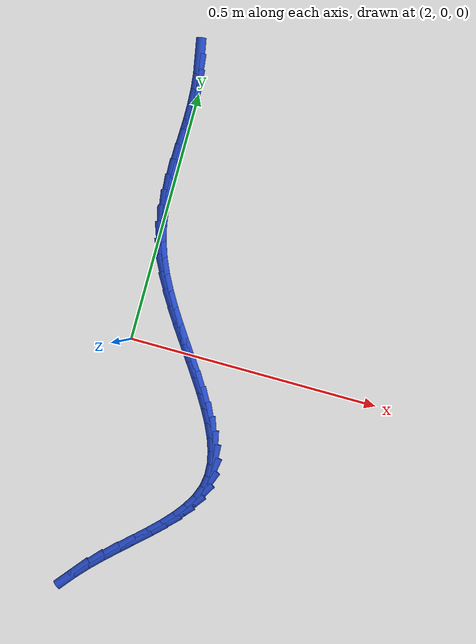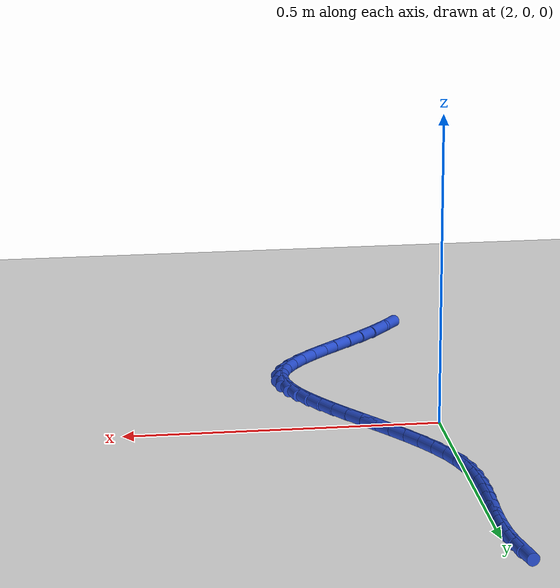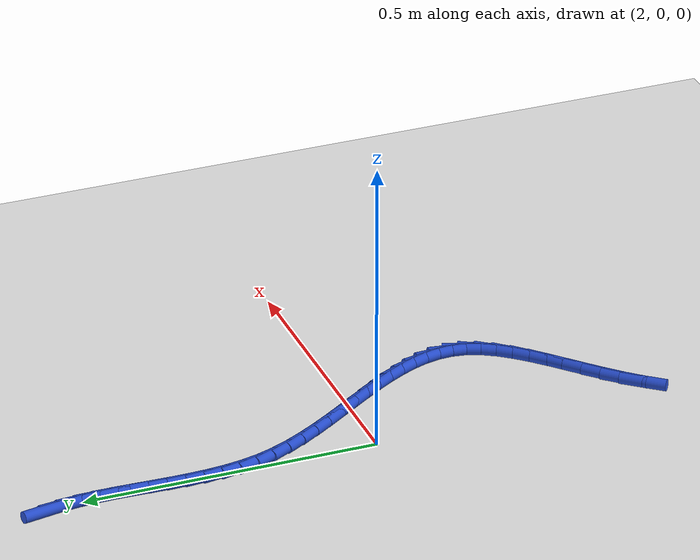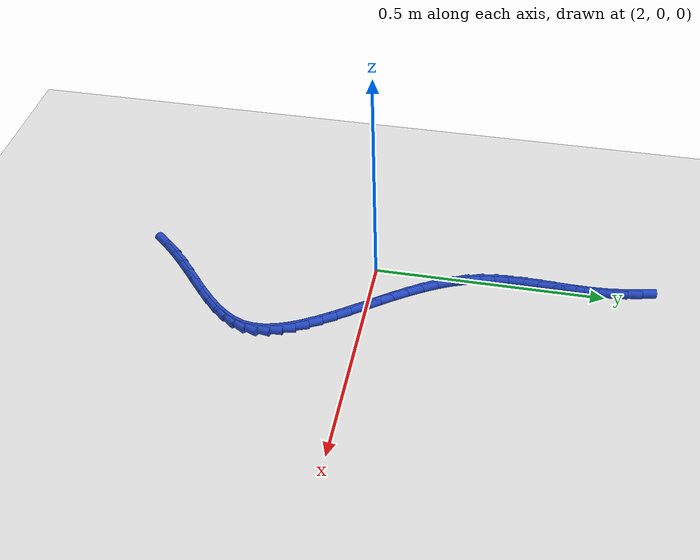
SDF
<sdf version="1.6">
 <world name="default">
  <model name="ground_plane">
   <static>1</static>
   <link name="link">
    <collision name="collision">
     <geometry><plane><normal>0 0 1</normal><size>100 100</size></plane></geometry>
     <surface><friction><ode><mu>100</mu><mu2>50</mu2></ode></friction></surface>
    </collision>
    <visual name="visual">
     <cast_shadows>0</cast_shadows>
     <geometry><plane><normal>0 0 1</normal><size>100 100</size></plane></geometry>
     <material>
      <script><uri>file://media/materials/scripts/gazebo.material</uri><name>Gazebo/WhiteGlow</name></script>
     </material>
    </visual>
   </link>
  </model>
  <model name="line">
   <link name="link_97">
    <pose>1.982863450508608 0.5677367094979131 0.01 0 1.57 -1.3891155950454888</pose>
    <collision name="collision">
     <geometry><cylinder><radius>0.01</radius><length>0.08</length></cylinder></geometry>
    </collision>
    <visual name="visual">
     <material>
      <script><name>Gazebo/Blue</name><uri>file://media/materials/scripts/gazebo.material</uri></script>
     </material>
     <geometry><cylinder><radius>0.01</radius><length>0.08</length></cylinder></geometry>
    </visual>
   </link>
   <link name="link_98">
    <pose>1.9884189875441824 0.5374953265242521 0.01 0 1.57 -1.458438260358546</pose>
    <collision name="collision">
     <geometry><cylinder><radius>0.01</radius><length>0.08</length></cylinder></geometry>
    </collision>
    <visual name="visual">
     <material>
      <script><name>Gazebo/Blue</name><uri>file://media/materials/scripts/gazebo.material</uri></script>
     </material>
     <geometry><cylinder><radius>0.01</radius><length>0.08</length></cylinder></geometry>
    </visual>
   </link>
   <link name="link_99">
    <pose>1.9918525388844555 0.5070650200397127 0.01 0 1.57 -1.5193888660239527</pose>
    <collision name="collision">
     <geometry><cylinder><radius>0.01</radius><length>0.08</length></cylinder></geometry>
    </collision>
    <visual name="visual">
     <material>
      <script><name>Gazebo/Blue</name><uri>file://media/materials/scripts/gazebo.material</uri></script>
     </material>
     <geometry><cylinder><radius>0.01</radius><length>0.08</length></cylinder></geometry>
    </visual>
   </link>
   <link name="link_100">
    <pose>1.9934245781234083 0.47651198069814393 0.01 0 1.57 -1.5640024327956468</pose>
    <collision name="collision">
     <geometry><cylinder><radius>0.01</radius><length>0.08</length></cylinder></geometry>
    </collision>
    <visual name="visual">
     <material>
      <script><name>Gazebo/Blue</name><uri>file://media/materials/scripts/gazebo.material</uri></script>
     </material>
     <geometry><cylinder><radius>0.01</radius><length>0.08</length></cylinder></geometry>
    </visual>
   </link>
   <link name="link_101">
    <pose>1.9936327978529906 0.4458643836063472 0.01 0 1.57 1.5495523296599962</pose>
    <collision name="collision">
     <geometry><cylinder><radius>0.01</radius><length>0.08</length></cylinder></geometry>
    </collision>
    <visual name="visual">
     <material>
      <script><name>Gazebo/Blue</name><uri>file://media/materials/scripts/gazebo.material</uri></script>
     </material>
     <geometry><cylinder><radius>0.01</radius><length>0.08</length></cylinder></geometry>
    </visual>
   </link>
   <link name="link_102">
    <pose>1.9929801939228236 0.41514955399719766 0.01 0 1.57 1.5379536326942955</pose>
    <collision name="collision">
     <geometry><cylinder><radius>0.01</radius><length>0.08</length></cylinder></geometry>
    </collision>
    <visual name="visual">
     <material>
      <script><name>Gazebo/Blue</name><uri>file://media/materials/scripts/gazebo.material</uri></script>
     </material>
     <geometry><cylinder><radius>0.01</radius><length>0.08</length></cylinder></geometry>
    </visual>
   </link>
   <link name="link_103">
    <pose>1.9919697621825294 0.3843948171035688 0.01 0 1.57 1.542680919656995</pose>
    <collision name="collision">
     <geometry><cylinder><radius>0.01</radius><length>0.08</length></cylinder></geometry>
    </collision>
    <visual name="visual">
     <material>
      <script><name>Gazebo/Blue</name><uri>file://media/materials/scripts/gazebo.material</uri></script>
     </material>
     <geometry><cylinder><radius>0.01</radius><length>0.08</length></cylinder></geometry>
    </visual>
   </link>
   <link name="link_104">
    <pose>1.9911044984817297 0.35362749815833566 0.01 0 1.57 1.5637368789330939</pose>
    <collision name="collision">
     <geometry><cylinder><radius>0.01</radius><length>0.08</length></cylinder></geometry>
    </collision>
    <visual name="visual">
     <material>
      <script><name>Gazebo/Blue</name><uri>file://media/materials/scripts/gazebo.material</uri></script>
     </material>
     <geometry><cylinder><radius>0.01</radius><length>0.08</length></cylinder></geometry>
    </visual>
   </link>
   <link name="link_105">
    <pose>1.990887398670048 0.3228749223943721 0.01 0 1.57 -1.5403907052928922</pose>
    <collision name="collision">
     <geometry><cylinder><radius>0.01</radius><length>0.08</length></cylinder></geometry>
    </collision>
    <visual name="visual">
     <material>
      <script><name>Gazebo/Blue</name><uri>file://media/materials/scripts/gazebo.material</uri></script>
     </material>
     <geometry><cylinder><radius>0.01</radius><length>0.08</length></cylinder></geometry>
    </visual>
   </link>
   <link name="link_106">
    <pose>1.9918214585971041 0.2921644150445527 0.01 0 1.57 -1.4865276493949087</pose>
    <collision name="collision">
     <geometry><cylinder><radius>0.01</radius><length>0.08</length></cylinder></geometry>
    </collision>
    <visual name="visual">
     <material>
      <script><name>Gazebo/Blue</name><uri>file://media/materials/scripts/gazebo.material</uri></script>
     </material>
     <geometry><cylinder><radius>0.01</radius><length>0.08</length></cylinder></geometry>
    </visual>
   </link>
   <link name="link_107">
    <pose>1.9944096741125217 0.2615233013417519 0.01 0 1.57 -1.4166688188383822</pose>
    <collision name="collision">
     <geometry><cylinder><radius>0.01</radius><length>0.08</length></cylinder></geometry>
    </collision>
    <visual name="visual">
     <material>
      <script><name>Gazebo/Blue</name><uri>file://media/materials/scripts/gazebo.material</uri></script>
     </material>
     <geometry><cylinder><radius>0.01</radius><length>0.08</length></cylinder></geometry>
    </visual>
   </link>
   <link name="link_108">
    <pose>1.9991550410659225 0.23097890651884334 0.01 0 1.57 -1.3320017417125347</pose>
    <collision name="collision">
     <geometry><cylinder><radius>0.01</radius><length>0.08</length></cylinder></geometry>
    </collision>
    <visual name="visual">
     <material>
      <script><name>Gazebo/Blue</name><uri>file://media/materials/scripts/gazebo.material</uri></script>
     </material>
     <geometry><cylinder><radius>0.01</radius><length>0.08</length></cylinder></geometry>
    </visual>
   </link>
   <link name="link_109">
    <pose>2.0065605553069283 0.20055855580870222 0.01 0 1.57 -1.2365067803038432</pose>
    <collision name="collision">
     <geometry><cylinder><radius>0.01</radius><length>0.08</length></cylinder></geometry>
    </collision>
    <visual name="visual">
     <material>
      <script><name>Gazebo/Blue</name><uri>file://media/materials/scripts/gazebo.material</uri></script>
     </material>
     <geometry><cylinder><radius>0.01</radius><length>0.08</length></cylinder></geometry>
    </visual>
   </link>
   <link name="link_110">
    <pose>2.017073633515142 0.1702898291479848 0.01 0 1.57 -1.150319866174723</pose>
    <collision name="collision">
     <geometry><cylinder><radius>0.01</radius><length>0.08</length></cylinder></geometry>
    </collision>
    <visual name="visual">
     <material>
      <script><name>Gazebo/Blue</name><uri>file://media/materials/scripts/gazebo.material</uri></script>
     </material>
     <geometry><cylinder><radius>0.01</radius><length>0.08</length></cylinder></geometry>
    </visual>
   </link>
   <link name="link_111">
    <pose>2.0305267273389247 0.14020312468599425 0.01 0 1.57 -1.0831588867777997</pose>
    <collision name="collision">
     <geometry><cylinder><radius>0.01</radius><length>0.08</length></cylinder></geometry>
    </collision>
    <visual name="visual">
     <material>
      <script><name>Gazebo/Blue</name><uri>file://media/materials/scripts/gazebo.material</uri></script>
     </material>
     <geometry><cylinder><radius>0.01</radius><length>0.08</length></cylinder></geometry>
    </visual>
   </link>
   <link name="link_112">
    <pose>2.046369840834295 0.11033059322232294 0.01 0 1.57 -1.0328209279517728</pose>
    <collision name="collision">
     <geometry><cylinder><radius>0.01</radius><length>0.08</length></cylinder></geometry>
    </collision>
    <visual name="visual">
     <material>
      <script><name>Gazebo/Blue</name><uri>file://media/materials/scripts/gazebo.material</uri></script>
     </material>
     <geometry><cylinder><radius>0.01</radius><length>0.08</length></cylinder></geometry>
    </visual>
   </link>
   <link name="link_113">
    <pose>2.064047216824827 0.08070441195868076 0.01 0 1.57 -0.9973031872608038</pose>
    <collision name="collision">
     <geometry><cylinder><radius>0.01</radius><length>0.08</length></cylinder></geometry>
    </collision>
    <visual name="visual">
     <material>
      <script><name>Gazebo/Blue</name><uri>file://media/materials/scripts/gazebo.material</uri></script>
     </material>
     <geometry><cylinder><radius>0.01</radius><length>0.08</length></cylinder></geometry>
    </visual>
   </link>
   <link name="link_114">
    <pose>2.083003098134097 0.0513567580967761 0.01 0 1.57 -0.975187289418705</pose>
    <collision name="collision">
     <geometry><cylinder><radius>0.01</radius><length>0.08</length></cylinder></geometry>
    </collision>
    <visual name="visual">
     <material>
      <script><name>Gazebo/Blue</name><uri>file://media/materials/scripts/gazebo.material</uri></script>
     </material>
     <geometry><cylinder><radius>0.01</radius><length>0.08</length></cylinder></geometry>
    </visual>
   </link>
   <link name="link_115">
    <pose>2.1026817275856806 0.022319808838318956 0.01 0 1.57 -0.9657112829425064</pose>
    <collision name="collision">
     <geometry><cylinder><radius>0.01</radius><length>0.08</length></cylinder></geometry>
    </collision>
    <visual name="visual">
     <material>
      <script><name>Gazebo/Blue</name><uri>file://media/materials/scripts/gazebo.material</uri></script>
     </material>
     <geometry><cylinder><radius>0.01</radius><length>0.08</length></cylinder></geometry>
    </visual>
   </link>
   <link name="link_116">
    <pose>2.122527348003154 -0.006374258614981934 0.01 0 1.57 -0.9688079115038486</pose>
    <collision name="collision">
     <geometry><cylinder><radius>0.01</radius><length>0.08</length></cylinder></geometry>
    </collision>
    <visual name="visual">
     <material>
      <script><name>Gazebo/Blue</name><uri>file://media/materials/scripts/gazebo.material</uri></script>
     </material>
     <geometry><cylinder><radius>0.01</radius><length>0.08</length></cylinder></geometry>
    </visual>
   </link>
   <link name="link_117">
    <pose>2.1419842022100934 -0.03469326706141811 0.01 0 1.57 -0.9851666242851022</pose>
    <collision name="collision">
     <geometry><cylinder><radius>0.01</radius><length>0.08</length></cylinder></geometry>
    </collision>
    <visual name="visual">
     <material>
      <script><name>Gazebo/Blue</name><uri>file://media/materials/scripts/gazebo.material</uri></script>
     </material>
     <geometry><cylinder><radius>0.01</radius><length>0.08</length></cylinder></geometry>
    </visual>
   </link>
   <link name="link_118">
    <pose>2.160496533030073 -0.06260503929927887 0.01 0 1.57 -1.0163480036511556</pose>
    <collision name="collision">
     <geometry><cylinder><radius>0.01</radius><length>0.08</length></cylinder></geometry>
    </collision>
    <visual name="visual">
     <material>
      <script><name>Gazebo/Blue</name><uri>file://media/materials/scripts/gazebo.material</uri></script>
     </material>
     <geometry><cylinder><radius>0.01</radius><length>0.08</length></cylinder></geometry>
    </visual>
   </link>
   <link name="link_119">
    <pose>2.17750858328667 -0.09007739812685586 0.01 0 1.57 -1.0649556719858848</pose>
    <collision name="collision">
     <geometry><cylinder><radius>0.01</radius><length>0.08</length></cylinder></geometry>
    </collision>
    <visual name="visual">
     <material>
      <script><name>Gazebo/Blue</name><uri>file://media/materials/scripts/gazebo.material</uri></script>
     </material>
     <geometry><cylinder><radius>0.01</radius><length>0.08</length></cylinder></geometry>
    </visual>
   </link>
   <link name="link_120">
    <pose>2.1924645958034588 -0.1170781663424399 0.01 0 1.57 -1.1348217024348515</pose>
    <collision name="collision">
     <geometry><cylinder><radius>0.01</radius><length>0.08</length></cylinder></geometry>
    </collision>
    <visual name="visual">
     <material>
      <script><name>Gazebo/Blue</name><uri>file://media/materials/scripts/gazebo.material</uri></script>
     </material>
     <geometry><cylinder><radius>0.01</radius><length>0.08</length></cylinder></geometry>
    </visual>
   </link>
   <link name="link_121">
    <pose>2.204808813404015 -0.14357516674432175 0.01 0 1.57 -1.2310263104804546</pose>
    <collision name="collision">
     <geometry><cylinder><radius>0.01</radius><length>0.08</length></cylinder></geometry>
    </collision>
    <visual name="visual">
     <material>
      <script><name>Gazebo/Blue</name><uri>file://media/materials/scripts/gazebo.material</uri></script>
     </material>
     <geometry><cylinder><radius>0.01</radius><length>0.08</length></cylinder></geometry>
    </visual>
   </link>
   <link name="link_122">
    <pose>2.213985478911916 -0.16953622213079295 0.01 0 1.57 -1.359250706928019</pose>
    <collision name="collision">
     <geometry><cylinder><radius>0.01</radius><length>0.08</length></cylinder></geometry>
    </collision>
    <visual name="visual">
     <material>
      <script><name>Gazebo/Blue</name><uri>file://media/materials/scripts/gazebo.material</uri></script>
     </material>
     <geometry><cylinder><radius>0.01</radius><length>0.08</length></cylinder></geometry>
    </visual>
   </link>
   <link name="link_123">
    <pose>2.2194388351507364 -0.19492915530014296 0.01 0 1.57 -1.5234672348436942</pose>
    <collision name="collision">
     <geometry><cylinder><radius>0.01</radius><length>0.08</length></cylinder></geometry>
    </collision>
    <visual name="visual">
     <material>
      <script><name>Gazebo/Blue</name><uri>file://media/materials/scripts/gazebo.material</uri></script>
     </material>
     <geometry><cylinder><radius>0.01</radius><length>0.08</length></cylinder></geometry>
    </visual>
   </link>
   <link name="link_124">
    <pose>2.2206131249440517 -0.2197217890506633 0.01 0 1.57 1.4204287847034684</pose>
    <collision name="collision">
     <geometry><cylinder><radius>0.01</radius><length>0.08</length></cylinder></geometry>
    </collision>
    <visual name="visual">
     <material>
      <script><name>Gazebo/Blue</name><uri>file://media/materials/scripts/gazebo.material</uri></script>
     </material>
     <geometry><cylinder><radius>0.01</radius><length>0.08</length></cylinder></geometry>
    </visual>
   </link>
   <link name="link_125">
    <pose>2.216952591115438 -0.2438819461806448 0.01 0 1.57 1.210686302287539</pose>
    <collision name="collision">
     <geometry><cylinder><radius>0.01</radius><length>0.08</length></cylinder></geometry>
    </collision>
    <visual name="visual">
     <material>
      <script><name>Gazebo/Blue</name><uri>file://media/materials/scripts/gazebo.material</uri></script>
     </material>
     <geometry><cylinder><radius>0.01</radius><length>0.08</length></cylinder></geometry>
    </visual>
   </link>
   <link name="link_126">
    <pose>2.2080955436721004 -0.2674048618700886 0.01 0 1.57 1.0395062085181337</pose>
    <collision name="collision">
     <geometry><cylinder><radius>0.01</radius><length>0.08</length></cylinder></geometry>
    </collision>
    <visual name="visual">
     <material>
      <script><name>Gazebo/Blue</name><uri>file://media/materials/scripts/gazebo.material</uri></script>
     </material>
     <geometry><cylinder><radius>0.01</radius><length>0.08</length></cylinder></geometry>
    </visual>
   </link>
   <link name="link_127">
    <pose>2.1945752582556026 -0.29041218700270727 0.01 0 1.57 0.9159471033818517</pose>
    <collision name="collision">
     <geometry><cylinder><radius>0.01</radius><length>0.08</length></cylinder></geometry>
    </collision>
    <visual name="visual">
     <material>
      <script><name>Gazebo/Blue</name><uri>file://media/materials/scripts/gazebo.material</uri></script>
     </material>
     <geometry><cylinder><radius>0.01</radius><length>0.08</length></cylinder></geometry>
    </visual>
   </link>
   <link name="link_128">
    <pose>2.1771828278314658 -0.31306198968002336 0.01 0 1.57 0.8314215031001987</pose>
    <collision name="collision">
     <geometry><cylinder><radius>0.01</radius><length>0.08</length></cylinder></geometry>
    </collision>
    <visual name="visual">
     <material>
      <script><name>Gazebo/Blue</name><uri>file://media/materials/scripts/gazebo.material</uri></script>
     </material>
     <geometry><cylinder><radius>0.01</radius><length>0.08</length></cylinder></geometry>
    </visual>
   </link>
   <link name="link_129">
    <pose>2.1567093692220527 -0.3355123413733862 0.01 0 1.57 0.7775528646209529</pose>
    <collision name="collision">
     <geometry><cylinder><radius>0.01</radius><length>0.08</length></cylinder></geometry>
    </collision>
    <visual name="visual">
     <material>
      <script><name>Gazebo/Blue</name><uri>file://media/materials/scripts/gazebo.material</uri></script>
     </material>
     <geometry><cylinder><radius>0.01</radius><length>0.08</length></cylinder></geometry>
    </visual>
   </link>
   <link name="link_130">
    <pose>2.1339459992497294 -0.35792131355414536 0.01 0 1.57 0.7483008294837766</pose>
    <collision name="collision">
     <geometry><cylinder><radius>0.01</radius><length>0.08</length></cylinder></geometry>
    </collision>
    <visual name="visual">
     <material>
      <script><name>Gazebo/Blue</name><uri>file://media/materials/scripts/gazebo.material</uri></script>
     </material>
     <geometry><cylinder><radius>0.01</radius><length>0.08</length></cylinder></geometry>
    </visual>
   </link>
   <link name="link_131">
    <pose>2.1096838347368587 -0.38044697769365093 0.01 0 1.57 0.7400158550325501</pose>
    <collision name="collision">
     <geometry><cylinder><radius>0.01</radius><length>0.08</length></cylinder></geometry>
    </collision>
    <visual name="visual">
     <material>
      <script><name>Gazebo/Blue</name><uri>file://media/materials/scripts/gazebo.material</uri></script>
     </material>
     <geometry><cylinder><radius>0.01</radius><length>0.08</length></cylinder></geometry>
    </visual>
   </link>
   <link name="link_132">
    <pose>2.0847139925058076 -0.4032474052632511 0.01 0 1.57 0.7510568868783013</pose>
    <collision name="collision">
     <geometry><cylinder><radius>0.01</radius><length>0.08</length></cylinder></geometry>
    </collision>
    <visual name="visual">
     <material>
      <script><name>Gazebo/Blue</name><uri>file://media/materials/scripts/gazebo.material</uri></script>
     </material>
     <geometry><cylinder><radius>0.01</radius><length>0.08</length></cylinder></geometry>
    </visual>
   </link>
   <link name="link_133">
    <pose>2.0598275893789406 -0.42648066773429605 0.01 0 1.57 0.7814748142341597</pose>
    <collision name="collision">
     <geometry><cylinder><radius>0.01</radius><length>0.08</length></cylinder></geometry>
    </collision>
    <visual name="visual">
     <material>
      <script><name>Gazebo/Blue</name><uri>file://media/materials/scripts/gazebo.material</uri></script>
     </material>
     <geometry><cylinder><radius>0.01</radius><length>0.08</length></cylinder></geometry>
    </visual>
   </link>
   <link name="link_134">
    <pose>2.0358157421786216 -0.45030483657813525 0.01 0 1.57 0.8316499705313407</pose>
    <collision name="collision">
     <geometry><cylinder><radius>0.01</radius><length>0.08</length></cylinder></geometry>
    </collision>
    <visual name="visual">
     <material>
      <script><name>Gazebo/Blue</name><uri>file://media/materials/scripts/gazebo.material</uri></script>
     </material>
     <geometry><cylinder><radius>0.01</radius><length>0.08</length></cylinder></geometry>
    </visual>
   </link>
   <link name="link_135">
    <pose>2.013429058510899 -0.4748644195822091 0.01 0 1.57 0.8855663092863161</pose>
    <collision name="collision">
     <geometry><cylinder><radius>0.01</radius><length>0.08</length></cylinder></geometry>
    </collision>
    <visual name="visual">
     <material>
      <script><name>Gazebo/Blue</name><uri>file://media/materials/scripts/gazebo.material</uri></script>
     </material>
     <geometry><cylinder><radius>0.01</radius><length>0.08</length></cylinder></geometry>
    </visual>
   </link>
  </model>
 </world>
</sdf>
